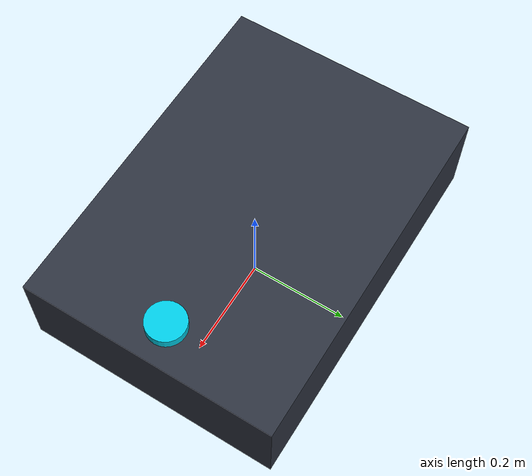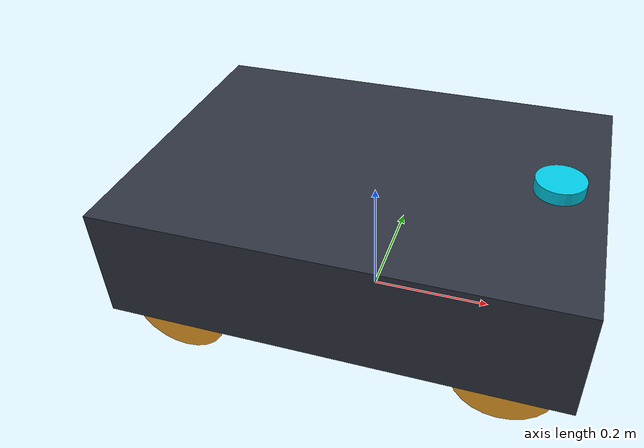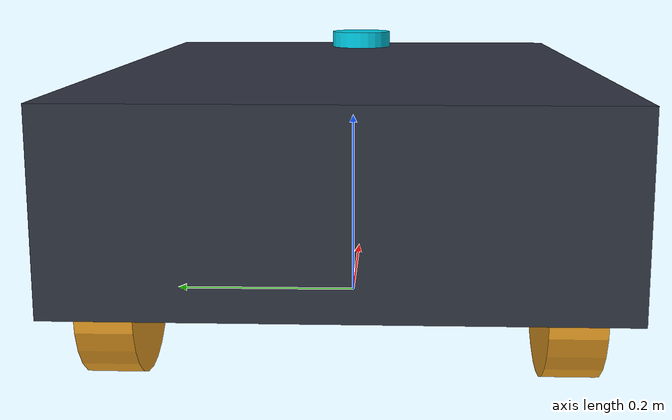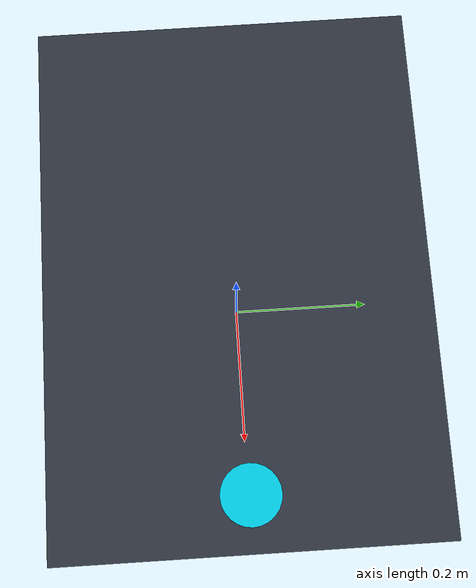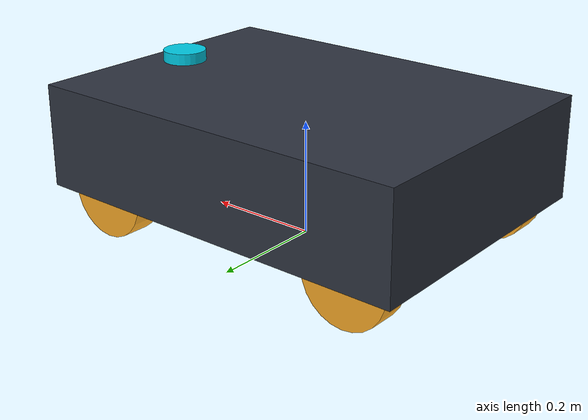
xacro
<?xml version="1.0"?>
<robot name="synq_amr" xmlns:xacro="http://www.ros.org/wiki/xacro">

  <!-- ==================== PHYSICAL PARAMETERS ==================== -->
  <xacro:property name="chassis_length" value="0.70"/>
  <xacro:property name="chassis_width"  value="0.50"/>
  <xacro:property name="chassis_height" value="0.18"/>
  <xacro:property name="chassis_mass"   value="22.0"/>

  <xacro:property name="wheel_radius"   value="0.076"/>
  <xacro:property name="wheel_width"    value="0.050"/>
  <xacro:property name="wheel_mass"     value="1.5"/>

  <xacro:property name="wheelbase_x"    value="0.25"/> <!-- Lx: 0.25m from center -->
  <xacro:property name="track_y"        value="0.20"/> <!-- Ly: 0.20m from center -->

  <!-- Inertia Macros -->
  <xacro:macro name="box_inertia" params="m w h d">
    <inertial>
      <mass value="${m}"/>
      <inertia ixx="${(m/12) * (h*h + d*d)}" ixy="0.0" ixz="0.0"
               iyy="${(m/12) * (w*w + d*d)}" iyz="0.0"
               izz="${(m/12) * (w*w + h*h)}"/>
    </inertial>
  </xacro:macro>

  <xacro:macro name="cylinder_inertia" params="m r h">
    <inertial>
      <mass value="${m}"/>
      <inertia ixx="${(m/12) * (3*r*r + h*h)}" ixy="0.0" ixz="0.0"
               iyy="${(m/12) * (3*r*r + h*h)}" iyz="0.0"
               izz="${(m/2) * (r*r)}"/>
    </inertial>
  </xacro:macro>

  <!-- ==================== BASE FOOTPRINT & CHASSIS ==================== -->
  <link name="base_footprint"/>

  <joint name="base_footprint_joint" type="fixed">
    <parent link="base_footprint"/>
    <child link="base_link"/>
    <origin xyz="0 0 ${wheel_radius}" rpy="0 0 0"/>
  </joint>

  <link name="base_link">
    <visual>
      <origin xyz="0 0 ${chassis_height/2}" rpy="0 0 0"/>
      <geometry>
        <box size="${chassis_length} ${chassis_width} ${chassis_height}"/>
      </geometry>
      <material name="synq_slate">
        <color rgba="0.18 0.20 0.25 1.0"/>
      </material>
    </visual>
    <collision>
      <origin xyz="0 0 ${chassis_height/2}" rpy="0 0 0"/>
      <geometry>
        <box size="${chassis_length} ${chassis_width} ${chassis_height}"/>
      </geometry>
    </collision>
    <xacro:box_inertia m="${chassis_mass}" w="${chassis_width}" h="${chassis_height}" d="${chassis_length}"/>
  </link>

  <!-- ==================== MECANUM WHEELS ==================== -->
  <xacro:macro name="mecanum_wheel" params="prefix x_reflect y_reflect">
    <link name="wheel_${prefix}_link">
      <visual>
        <origin xyz="0 0 0" rpy="0 0 0"/>
        <geometry>
          <cylinder radius="${wheel_radius}" length="${wheel_width}"/>
        </geometry>
        <material name="synq_amber">
          <color rgba="0.95 0.65 0.15 1.0"/>
        </material>
      </visual>
      <collision>
        <origin xyz="0 0 0" rpy="0 0 0"/>
        <geometry>
          <cylinder radius="${wheel_radius}" length="${wheel_width}"/>
        </geometry>
      </collision>
      <xacro:cylinder_inertia m="${wheel_mass}" r="${wheel_radius}" h="${wheel_width}"/>
    </link>

    <joint name="wheel_${prefix}_joint" type="continuous">
      <parent link="base_link"/>
      <child link="wheel_${prefix}_link"/>
      <origin xyz="${x_reflect*wheelbase_x} ${y_reflect*track_y} 0" rpy="-1.57079632679 0 0"/>
      <axis xyz="0 0 1"/>
      <dynamics damping="0.05" friction="0.1"/>
    </joint>

    <gazebo reference="wheel_${prefix}_link">
      <mu1>0.05</mu1>
      <mu2>0.80</mu2>
      <kp>1000000.0</kp>
      <kd>100.0</kd>
      <material>Gazebo/Yellow</material>
    </gazebo>
  </xacro:macro>

  <xacro:mecanum_wheel prefix="fl" x_reflect="1"  y_reflect="1" />
  <xacro:mecanum_wheel prefix="fr" x_reflect="1"  y_reflect="-1"/>
  <xacro:mecanum_wheel prefix="rl" x_reflect="-1" y_reflect="1" />
  <xacro:mecanum_wheel prefix="rr" x_reflect="-1" y_reflect="-1"/>

  <!-- ==================== SENSORS ==================== -->
  <!-- 2D LiDAR Scanner -->
  <link name="lidar_link">
    <visual>
      <origin xyz="0 0 0" rpy="0 0 0"/>
      <geometry>
        <cylinder radius="0.038" length="0.040"/>
      </geometry>
      <material name="synq_cyan">
        <color rgba="0.0 0.8 0.9 1.0"/>
      </material>
    </visual>
    <collision>
      <origin xyz="0 0 0" rpy="0 0 0"/>
      <geometry>
        <cylinder radius="0.038" length="0.040"/>
      </geometry>
    </collision>
    <inertial>
      <mass value="0.25"/>
      <inertia ixx="0.0001" ixy="0" ixz="0" iyy="0.0001" iyz="0" izz="0.0001"/>
    </inertial>
  </link>

  <joint name="lidar_joint" type="fixed">
    <parent link="base_link"/>
    <child link="lidar_link"/>
    <origin xyz="0.28 0.0 ${chassis_height}" rpy="0 0 0"/>
  </joint>

  <!-- Gazebo LiDAR Sensor Plugin -->
  <gazebo reference="lidar_link">
    <sensor name="lidar_sensor" type="gpu_lidar">
      <topic>/sensors/lidar/scan</topic>
      <update_rate>10</update_rate>
      <ray>
        <scan>
          <horizontal>
            <samples>360</samples>
            <resolution>1</resolution>
            <min_angle>-3.14159265</min_angle>
            <max_angle>3.14159265</max_angle>
          </horizontal>
        </scan>
        <range>
          <min>0.12</min>
          <max>25.0</max>
          <resolution>0.01</resolution>
        </range>
      </ray>
      <always_on>true</always_on>
      <visualize>true</visualize>
    </sensor>
  </gazebo>

  <!-- 6-DOF IMU -->
  <link name="imu_link">
    <inertial>
      <mass value="0.05"/>
      <inertia ixx="0.00001" ixy="0" ixz="0" iyy="0.00001" iyz="0" izz="0.00001"/>
    </inertial>
  </link>

  <joint name="imu_joint" type="fixed">
    <parent link="base_link"/>
    <child link="imu_link"/>
    <origin xyz="0.0 0.0 0.08" rpy="0 0 0"/>
  </joint>

  <!-- Gazebo IMU Sensor Plugin -->
  <gazebo reference="imu_link">
    <sensor name="imu_sensor" type="imu">
      <topic>/sensors/imu</topic>
      <update_rate>100</update_rate>
      <always_on>true</always_on>
    </sensor>
  </gazebo>

  <!-- Universal Modular Payload Dock Interface -->
  <link name="payload_dock_link"/>

  <joint name="payload_dock_joint" type="fixed">
    <parent link="base_link"/>
    <child link="payload_dock_link"/>
    <origin xyz="0.0 0.0 ${chassis_height}" rpy="0 0 0"/>
  </joint>

  <!-- ==================== ROS 2 CONTROL HARDWARE INTERFACE ==================== -->
  <ros2_control name="synq_hardware" type="system">
    <hardware>
      <plugin>gz_ros2_control/GazeboSimSystem</plugin>
    </hardware>
    <joint name="wheel_fl_joint">
      <command_interface name="velocity">
        <param name="min">-20.0</param>
        <param name="max">20.0</param>
      </command_interface>
      <state_interface name="position"/>
      <state_interface name="velocity"/>
    </joint>
    <joint name="wheel_fr_joint">
      <command_interface name="velocity">
        <param name="min">-20.0</param>
        <param name="max">20.0</param>
      </command_interface>
      <state_interface name="position"/>
      <state_interface name="velocity"/>
    </joint>
    <joint name="wheel_rl_joint">
      <command_interface name="velocity">
        <param name="min">-20.0</param>
        <param name="max">20.0</param>
      </command_interface>
      <state_interface name="position"/>
      <state_interface name="velocity"/>
    </joint>
    <joint name="wheel_rr_joint">
      <command_interface name="velocity">
        <param name="min">-20.0</param>
        <param name="max">20.0</param>
      </command_interface>
      <state_interface name="position"/>
      <state_interface name="velocity"/>
    </joint>
  </ros2_control>

  <!-- Gazebo ROS2 Control Plugin -->
  <gazebo>
    <plugin filename="gz_ros2_control-system" name="gz_ros2_control::GazeboSimROS2ControlPlugin">
      <parameters>$(find synq_bringup)/config/synq_controllers.yaml</parameters>
    </plugin>
  </gazebo>

</robot>
